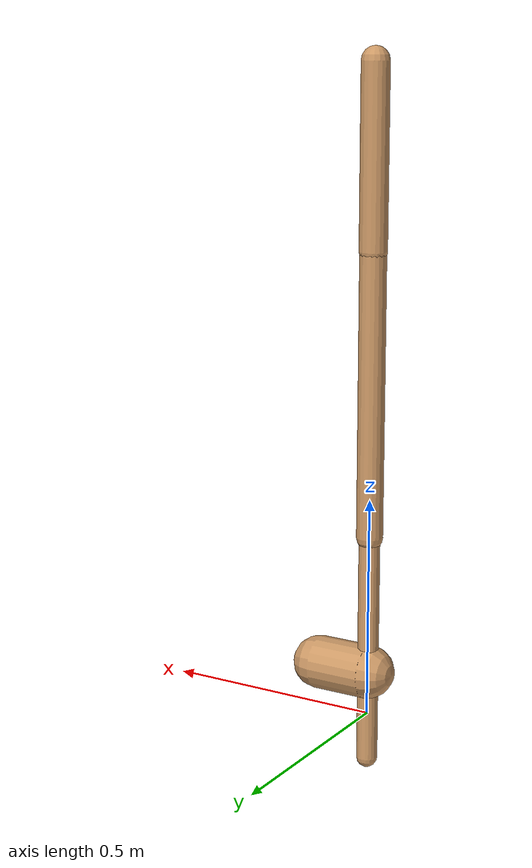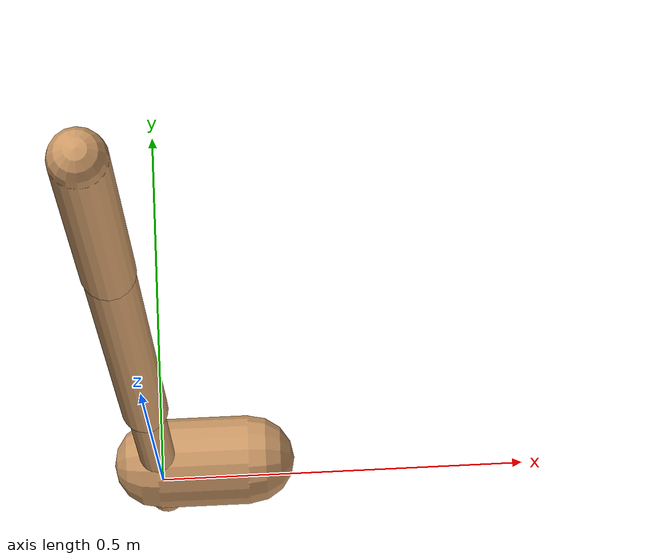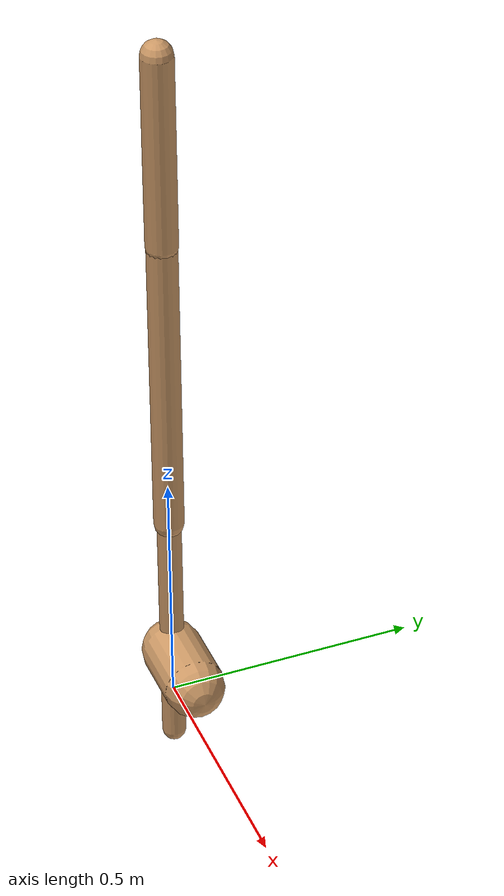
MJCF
<mujoco model="walker2d">
  <compiler angle="degree" coordinate="global" inertiafromgeom="true" />
  <default>
    <joint armature="0.01" damping=".1" limited="true" />
    <geom conaffinity="0" condim="3" contype="1" density="1000" friction="0.8 .1 .1" rgba="0.8 0.6 .4 1" />
  </default>
  <option integrator="RK4" timestep="0.002" />
  <worldbody>

    <body name="torso" pos="0 0 0.3890669785110087">
      <joint armature="0" axis="1 0 0" damping="0" limited="false" name="ignorex" pos="0 0 0" stiffness="0" type="slide" />
      <joint armature="0" axis="0 0 1" damping="0" limited="false" name="ignorez" pos="0 0 0" ref="1.25" stiffness="0" type="slide" />
      <joint armature="0" axis="0 1 0" damping="0" limited="false" name="ignorey" pos="0 0 0" stiffness="0" type="hinge" />
      <geom fromto="0 0 1.45 0 0 1.05" name="torso_geom" size="0.03117818631379193" type="capsule" />
      <body name="thigh">
        <joint axis="0 -1 0" name="thigh_joint" pos="0 0 1.05" range="-150 0" type="hinge" />
        <geom fromto="0.0 0.0 1.05 0.0 0.0 0.4157051154421537" name="thigh_geom" size="0.029772356363753874" type="capsule" />
        <body name="leg" pos="0.0 0.0 -0.18429488455784626">
          <joint axis="0 -1 0" name="leg_joint" pos="0 0 0.6" range="-150 0" type="hinge" />
          <geom fromto="0.0 0.0 0.6 0.0 0.0 -0.10477209395316245" name="leg_geom" size="0.023817885091003098" type="capsule" />
          <body name="foot" pos="0.0 0.0 -0.20477209395316245">
            <joint axis="0 -1 0" name="foot_joint" pos="0 0 0.1" range="-45 45" type="hinge" />
            <geom fromto="0.0 0.0 0.1 0.12337970077608872 0.0 0.1" name="foot_geom" size="0.06042950189509319" type="capsule" />
          </body>
        </body>
      </body>

      <body name="thigh_left">
        <joint axis="0 -1 0" name="thigh_left_joint" pos="0 0 1.05" range="-150 0" type="hinge" />
        <geom fromto="0.0 0.0 1.05 0.0 0.0 0.4157051154421537" name="thigh_left_geom" rgba=".7 .3 .6 1" size="0.029772356363753874" type="capsule" />
        <body name="leg_left" pos="0.0 0.0 -0.18429488455784626">
          <joint axis="0 -1 0" name="leg_left_joint" pos="0 0 0.6" range="-150 0" type="hinge" />
          <geom fromto="0.0 0.0 0.6 0.0 0.0 -0.10477209395316245" name="leg_left_geom" rgba=".7 .3 .6 1" size="0.023817885091003098" type="capsule" />
          <body name="foot_left" pos="0.0 0.0 -0.20477209395316245">
            <joint axis="0 -1 0" name="foot_left_joint" pos="0 0 0.1" range="-45 45" type="hinge" />
            <geom fromto="0.0 0.0 0.1 0.12337970077608872 0.0 0.1" name="foot_left_geom" rgba=".7 .3 .6 1" size="0.06042950189509319" type="capsule" />
          </body>
        </body>
      </body>
    </body>
  </worldbody>
  <actuator>

    <motor ctrllimited="true" ctrlrange="-1.0 1.0" gear="100" joint="thigh_joint" />
    <motor ctrllimited="true" ctrlrange="-1.0 1.0" gear="100" joint="leg_joint" />
    <motor ctrllimited="true" ctrlrange="-1.0 1.0" gear="100" joint="foot_joint" />
    <motor ctrllimited="true" ctrlrange="-1.0 1.0" gear="100" joint="thigh_left_joint" />
    <motor ctrllimited="true" ctrlrange="-1.0 1.0" gear="100" joint="leg_left_joint" />
    <motor ctrllimited="true" ctrlrange="-1.0 1.0" gear="100" joint="foot_left_joint" />

  </actuator>
</mujoco>
